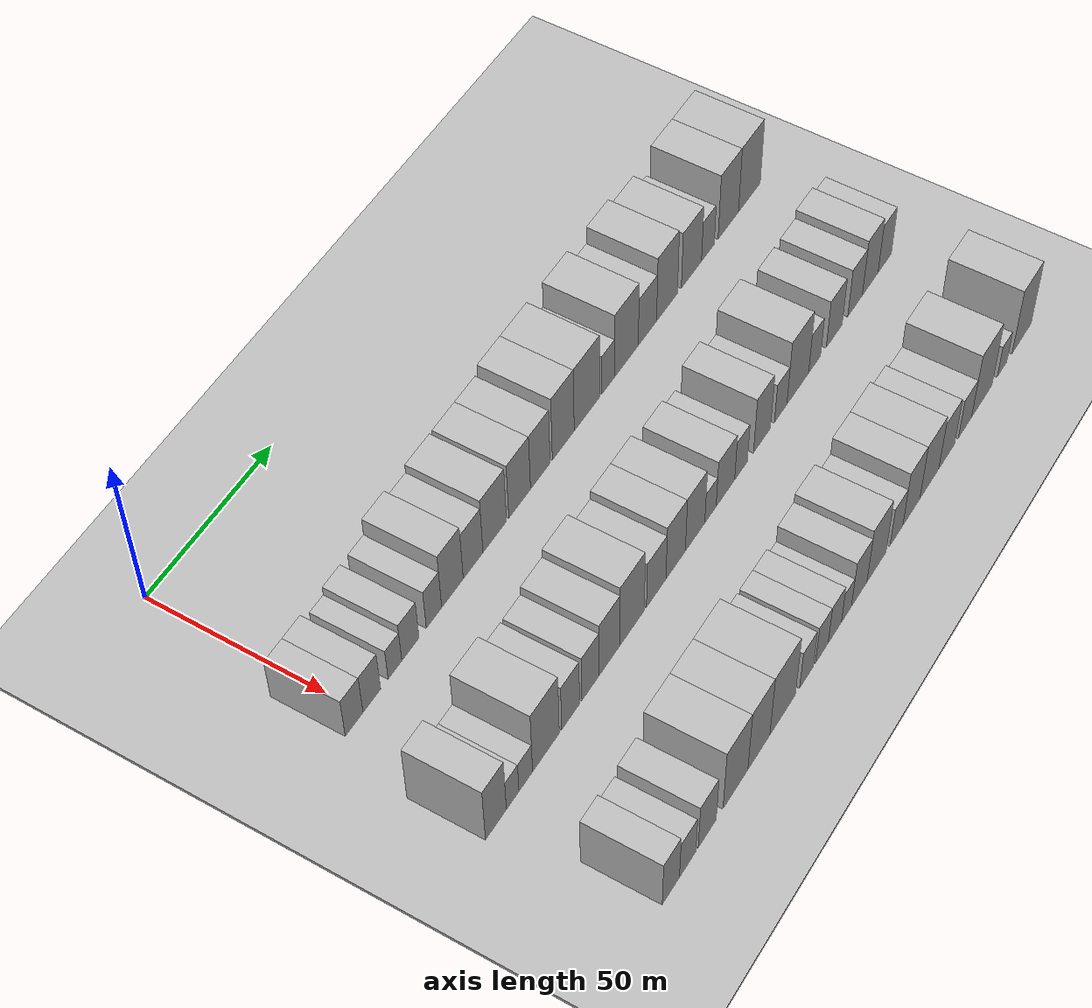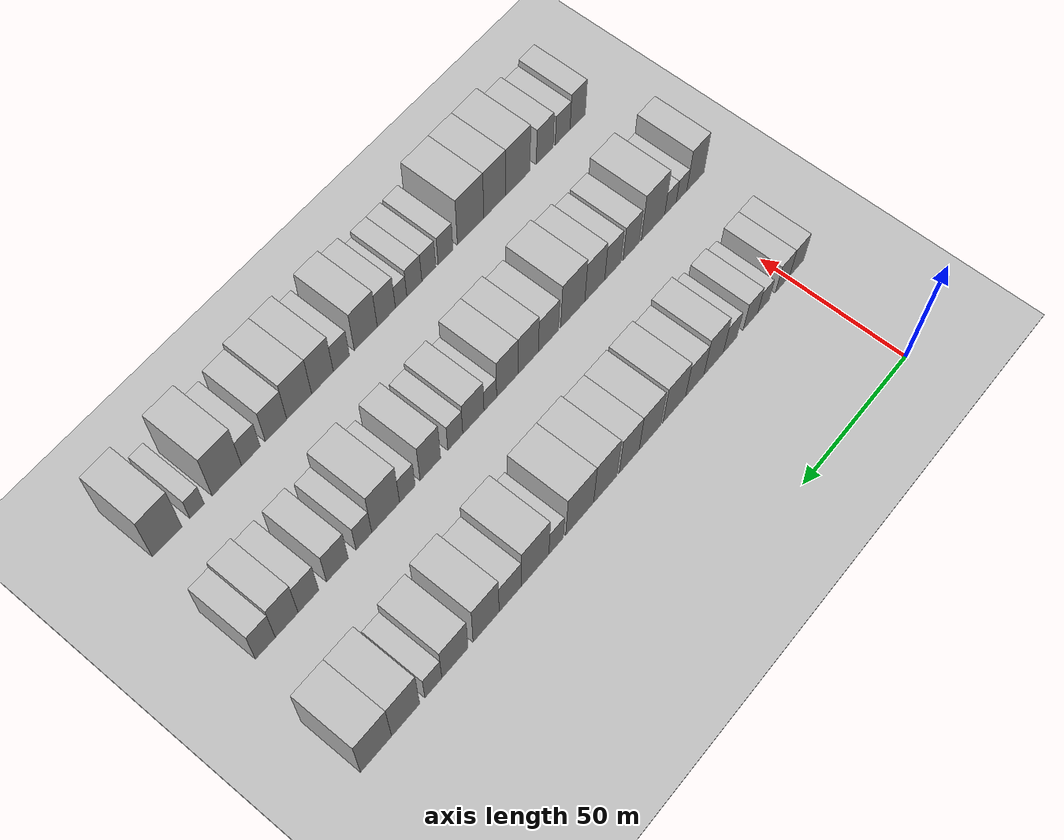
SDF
<sdf version="1.6">
 <world name="default">
  <include><name>ground_plane_1</name><uri>model://HANNAS_ground_plane</uri></include>
  <include>
   <name>ground_plane_2</name>
   <uri>model://HANNAS_ground_plane</uri>
   <pose>100 0 0  0 0 0</pose>
  </include>
  <model name="building_41">
   <static>1</static>
   <pose>50.0000 -3.7257 0 0.000000 0.000000 0.000000</pose>
   <link name="link">
    <pose>0 0 7.50 0 0 0</pose>
    <collision name="collision"><geometry><box><size>20.0000 6.9919 15.0000</size></box></geometry></collision>
    <visual name="visual">
     <cast_shadows>0</cast_shadows>
     <geometry><box><size>20.0000 6.9919 15.0000</size></box></geometry>
     <material>
      <script>
       <uri>model://HANNAS_wall/materials/scripts</uri>
       <uri>model://HANNAS_wall/materials/textures</uri>
       <name>vrc/HANNAS_wall</name>
      </script>
     </material>
    </visual>
   </link>
  </model>
  <model name="building_42">
   <static>1</static>
   <pose>50.0000 3.2710 0 0.000000 0.000000 0.000000</pose>
   <link name="link">
    <pose>0 0 7.50 0 0 0</pose>
    <collision name="collision"><geometry><box><size>20.0000 7.0014 15.0000</size></box></geometry></collision>
    <visual name="visual">
     <cast_shadows>0</cast_shadows>
     <geometry><box><size>20.0000 7.0014 15.0000</size></box></geometry>
     <material>
      <script>
       <uri>model://HANNAS_wall/materials/scripts</uri>
       <uri>model://HANNAS_wall/materials/textures</uri>
       <name>vrc/HANNAS_wall</name>
      </script>
     </material>
    </visual>
   </link>
  </model>
  <model name="building_43">
   <static>1</static>
   <pose>50.0000 12.5421 0 0.000000 0.000000 0.000000</pose>
   <link name="link">
    <pose>0 0 6.00 0 0 0</pose>
    <collision name="collision"><geometry><box><size>20.0000 5.5408 12.0000</size></box></geometry></collision>
    <visual name="visual">
     <cast_shadows>0</cast_shadows>
     <geometry><box><size>20.0000 5.5408 12.0000</size></box></geometry>
     <material>
      <script>
       <uri>model://HANNAS_wall/materials/scripts</uri>
       <uri>model://HANNAS_wall/materials/textures</uri>
       <name>vrc/HANNAS_wall</name>
      </script>
     </material>
    </visual>
   </link>
  </model>
  <model name="building_44">
   <static>1</static>
   <pose>50.0000 18.8378 0 0.000000 0.000000 0.000000</pose>
   <link name="link">
    <pose>0 0 7.50 0 0 0</pose>
    <collision name="collision"><geometry><box><size>20.0000 7.0507 15.0000</size></box></geometry></collision>
    <visual name="visual">
     <cast_shadows>0</cast_shadows>
     <geometry><box><size>20.0000 7.0507 15.0000</size></box></geometry>
     <material>
      <script>
       <uri>model://HANNAS_wall/materials/scripts</uri>
       <uri>model://HANNAS_wall/materials/textures</uri>
       <name>vrc/HANNAS_wall</name>
      </script>
     </material>
    </visual>
   </link>
  </model>
  <model name="building_45">
   <static>1</static>
   <pose>50.0000 28.5747 0 0.000000 0.000000 0.000000</pose>
   <link name="link">
    <pose>0 0 7.50 0 0 0</pose>
    <collision name="collision"><geometry><box><size>20.0000 6.4230 15.0000</size></box></geometry></collision>
    <visual name="visual">
     <cast_shadows>0</cast_shadows>
     <geometry><box><size>20.0000 6.4230 15.0000</size></box></geometry>
     <material>
      <script>
       <uri>model://HANNAS_wall/materials/scripts</uri>
       <uri>model://HANNAS_wall/materials/textures</uri>
       <name>vrc/HANNAS_wall</name>
      </script>
     </material>
    </visual>
   </link>
  </model>
  <model name="building_46">
   <static>1</static>
   <pose>50.0000 36.3425 0 0.000000 0.000000 0.000000</pose>
   <link name="link">
    <pose>0 0 10.50 0 0 0</pose>
    <collision name="collision"><geometry><box><size>20.0000 9.1125 21.0000</size></box></geometry></collision>
    <visual name="visual">
     <cast_shadows>0</cast_shadows>
     <geometry><box><size>20.0000 9.1125 21.0000</size></box></geometry>
     <material>
      <script>
       <uri>model://HANNAS_wall/materials/scripts</uri>
       <uri>model://HANNAS_wall/materials/textures</uri>
       <name>vrc/HANNAS_wall</name>
      </script>
     </material>
    </visual>
   </link>
  </model>
  <model name="building_47">
   <static>1</static>
   <pose>50.0000 45.1180 0 0.000000 0.000000 0.000000</pose>
   <link name="link">
    <pose>0 0 9.00 0 0 0</pose>
    <collision name="collision"><geometry><box><size>20.0000 8.4386 18.0000</size></box></geometry></collision>
    <visual name="visual">
     <cast_shadows>0</cast_shadows>
     <geometry><box><size>20.0000 8.4386 18.0000</size></box></geometry>
     <material>
      <script>
       <uri>model://HANNAS_wall/materials/scripts</uri>
       <uri>model://HANNAS_wall/materials/textures</uri>
       <name>vrc/HANNAS_wall</name>
      </script>
     </material>
    </visual>
   </link>
  </model>
  <model name="building_48">
   <static>1</static>
   <pose>50.0000 54.4829 0 0.000000 0.000000 0.000000</pose>
   <link name="link">
    <pose>0 0 10.50 0 0 0</pose>
    <collision name="collision"><geometry><box><size>20.0000 10.2913 21.0000</size></box></geometry></collision>
    <visual name="visual">
     <cast_shadows>0</cast_shadows>
     <geometry><box><size>20.0000 10.2913 21.0000</size></box></geometry>
     <material>
      <script>
       <uri>model://HANNAS_wall/materials/scripts</uri>
       <uri>model://HANNAS_wall/materials/textures</uri>
       <name>vrc/HANNAS_wall</name>
      </script>
     </material>
    </visual>
   </link>
  </model>
  <model name="building_49">
   <static>1</static>
   <pose>50.0000 65.4643 0 0.000000 0.000000 0.000000</pose>
   <link name="link">
    <pose>0 0 10.50 0 0 0</pose>
    <collision name="collision"><geometry><box><size>20.0000 9.6715 21.0000</size></box></geometry></collision>
    <visual name="visual">
     <cast_shadows>0</cast_shadows>
     <geometry><box><size>20.0000 9.6715 21.0000</size></box></geometry>
     <material>
      <script>
       <uri>model://HANNAS_wall/materials/scripts</uri>
       <uri>model://HANNAS_wall/materials/textures</uri>
       <name>vrc/HANNAS_wall</name>
      </script>
     </material>
    </visual>
   </link>
  </model>
  <model name="building_50">
   <static>1</static>
   <pose>50.0000 74.7260 0 0.000000 0.000000 0.000000</pose>
   <link name="link">
    <pose>0 0 10.50 0 0 0</pose>
    <collision name="collision"><geometry><box><size>20.0000 8.8518 21.0000</size></box></geometry></collision>
    <visual name="visual">
     <cast_shadows>0</cast_shadows>
     <geometry><box><size>20.0000 8.8518 21.0000</size></box></geometry>
     <material>
      <script>
       <uri>model://HANNAS_wall/materials/scripts</uri>
       <uri>model://HANNAS_wall/materials/textures</uri>
       <name>vrc/HANNAS_wall</name>
      </script>
     </material>
    </visual>
   </link>
  </model>
  <model name="building_51">
   <static>1</static>
   <pose>50.0000 85.1890 0 0.000000 0.000000 0.000000</pose>
   <link name="link">
    <pose>0 0 12.00 0 0 0</pose>
    <collision name="collision"><geometry><box><size>20.0000 10.0742 24.0000</size></box></geometry></collision>
    <visual name="visual">
     <cast_shadows>0</cast_shadows>
     <geometry><box><size>20.0000 10.0742 24.0000</size></box></geometry>
     <material>
      <script>
       <uri>model://HANNAS_wall/materials/scripts</uri>
       <uri>model://HANNAS_wall/materials/textures</uri>
       <name>vrc/HANNAS_wall</name>
      </script>
     </material>
    </visual>
   </link>
  </model>
  <model name="building_52">
   <static>1</static>
   <pose>50.0000 96.1986 0 0.000000 0.000000 0.000000</pose>
   <link name="link">
    <pose>0 0 12.00 0 0 0</pose>
    <collision name="collision"><geometry><box><size>20.0000 11.9450 24.0000</size></box></geometry></collision>
    <visual name="visual">
     <cast_shadows>0</cast_shadows>
     <geometry><box><size>20.0000 11.9450 24.0000</size></box></geometry>
     <material>
      <script>
       <uri>model://HANNAS_wall/materials/scripts</uri>
       <uri>model://HANNAS_wall/materials/textures</uri>
       <name>vrc/HANNAS_wall</name>
      </script>
     </material>
    </visual>
   </link>
  </model>
  <model name="building_53">
   <static>1</static>
   <pose>50.0000 106.2073 0 0.000000 0.000000 0.000000</pose>
   <link name="link">
    <pose>0 0 7.50 0 0 0</pose>
    <collision name="collision"><geometry><box><size>20.0000 6.0725 15.0000</size></box></geometry></collision>
    <visual name="visual">
     <cast_shadows>0</cast_shadows>
     <geometry><box><size>20.0000 6.0725 15.0000</size></box></geometry>
     <material>
      <script>
       <uri>model://HANNAS_wall/materials/scripts</uri>
       <uri>model://HANNAS_wall/materials/textures</uri>
       <name>vrc/HANNAS_wall</name>
      </script>
     </material>
    </visual>
   </link>
  </model>
  <model name="building_54">
   <static>1</static>
   <pose>50.0000 114.9942 0 0.000000 0.000000 0.000000</pose>
   <link name="link">
    <pose>0 0 12.00 0 0 0</pose>
    <collision name="collision"><geometry><box><size>20.0000 11.5012 24.0000</size></box></geometry></collision>
    <visual name="visual">
     <cast_shadows>0</cast_shadows>
     <geometry><box><size>20.0000 11.5012 24.0000</size></box></geometry>
     <material>
      <script>
       <uri>model://HANNAS_wall/materials/scripts</uri>
       <uri>model://HANNAS_wall/materials/textures</uri>
       <name>vrc/HANNAS_wall</name>
      </script>
     </material>
    </visual>
   </link>
  </model>
  <model name="building_55">
   <static>1</static>
   <pose>50.0000 125.2269 0 0.000000 0.000000 0.000000</pose>
   <link name="link">
    <pose>0 0 9.00 0 0 0</pose>
    <collision name="collision"><geometry><box><size>20.0000 8.9643 18.0000</size></box></geometry></collision>
    <visual name="visual">
     <cast_shadows>0</cast_shadows>
     <geometry><box><size>20.0000 8.9643 18.0000</size></box></geometry>
     <material>
      <script>
       <uri>model://HANNAS_wall/materials/scripts</uri>
       <uri>model://HANNAS_wall/materials/textures</uri>
       <name>vrc/HANNAS_wall</name>
      </script>
     </material>
    </visual>
   </link>
  </model>
  <model name="building_56">
   <static>1</static>
   <pose>50.0000 134.9218 0 0.000000 0.000000 0.000000</pose>
   <link name="link">
    <pose>0 0 12.00 0 0 0</pose>
    <collision name="collision"><geometry><box><size>20.0000 10.4256 24.0000</size></box></geometry></collision>
    <visual name="visual">
     <cast_shadows>0</cast_shadows>
     <geometry><box><size>20.0000 10.4256 24.0000</size></box></geometry>
     <material>
      <script>
       <uri>model://HANNAS_wall/materials/scripts</uri>
       <uri>model://HANNAS_wall/materials/textures</uri>
       <name>vrc/HANNAS_wall</name>
      </script>
     </material>
    </visual>
   </link>
  </model>
  <model name="building_57">
   <static>1</static>
   <pose>50.0000 147.2808 0 0.000000 0.000000 0.000000</pose>
   <link name="link">
    <pose>0 0 10.50 0 0 0</pose>
    <collision name="collision"><geometry><box><size>20.0000 10.2925 21.0000</size></box></geometry></collision>
    <visual name="visual">
     <cast_shadows>0</cast_shadows>
     <geometry><box><size>20.0000 10.2925 21.0000</size></box></geometry>
     <material>
      <script>
       <uri>model://HANNAS_wall/materials/scripts</uri>
       <uri>model://HANNAS_wall/materials/textures</uri>
       <name>vrc/HANNAS_wall</name>
      </script>
     </material>
    </visual>
   </link>
  </model>
  <model name="building_58">
   <static>1</static>
   <pose>50.0000 155.7194 0 0.000000 0.000000 0.000000</pose>
   <link name="link">
    <pose>0 0 7.50 0 0 0</pose>
    <collision name="collision"><geometry><box><size>20.0000 6.5847 15.0000</size></box></geometry></collision>
    <visual name="visual">
     <cast_shadows>0</cast_shadows>
     <geometry><box><size>20.0000 6.5847 15.0000</size></box></geometry>
     <material>
      <script>
       <uri>model://HANNAS_wall/materials/scripts</uri>
       <uri>model://HANNAS_wall/materials/textures</uri>
       <name>vrc/HANNAS_wall</name>
      </script>
     </material>
    </visual>
   </link>
  </model>
  <model name="building_59">
   <static>1</static>
   <pose>50.0000 166.3810 0 0.000000 0.000000 0.000000</pose>
   <link name="link">
    <pose>0 0 12.00 0 0 0</pose>
    <collision name="collision"><geometry><box><size>20.0000 10.7384 24.0000</size></box></geometry></collision>
    <visual name="visual">
     <cast_shadows>0</cast_shadows>
     <geometry><box><size>20.0000 10.7384 24.0000</size></box></geometry>
     <material>
      <script>
       <uri>model://HANNAS_wall/materials/scripts</uri>
       <uri>model://HANNAS_wall/materials/textures</uri>
       <name>vrc/HANNAS_wall</name>
      </script>
     </material>
    </visual>
   </link>
  </model>
  <model name="building_60">
   <static>1</static>
   <pose>50.0000 177.5760 0 0.000000 0.000000 0.000000</pose>
   <link name="link">
    <pose>0 0 12.00 0 0 0</pose>
    <collision name="collision"><geometry><box><size>20.0000 11.6517 24.0000</size></box></geometry></collision>
    <visual name="visual">
     <cast_shadows>0</cast_shadows>
     <geometry><box><size>20.0000 11.6517 24.0000</size></box></geometry>
     <material>
      <script>
       <uri>model://HANNAS_wall/materials/scripts</uri>
       <uri>model://HANNAS_wall/materials/textures</uri>
       <name>vrc/HANNAS_wall</name>
      </script>
     </material>
    </visual>
   </link>
  </model>
  <model name="building_123">
   <static>1</static>
   <pose>90.0000 -8.9110 0 0.000000 0.000000 0.000000</pose>
   <link name="link">
    <pose>0 0 10.50 0 0 0</pose>
    <collision name="collision"><geometry><box><size>20.0000 8.4237 21.0000</size></box></geometry></collision>
    <visual name="visual">
     <cast_shadows>0</cast_shadows>
     <geometry><box><size>20.0000 8.4237 21.0000</size></box></geometry>
     <material>
      <script>
       <uri>model://HANNAS_wall/materials/scripts</uri>
       <uri>model://HANNAS_wall/materials/textures</uri>
       <name>vrc/HANNAS_wall</name>
      </script>
     </material>
    </visual>
   </link>
  </model>
  <model name="building_124">
   <static>1</static>
   <pose>90.0000 -2.1294 0 0.000000 0.000000 0.000000</pose>
   <link name="link">
    <pose>0 0 6.00 0 0 0</pose>
    <collision name="collision"><geometry><box><size>20.0000 5.1395 12.0000</size></box></geometry></collision>
    <visual name="visual">
     <cast_shadows>0</cast_shadows>
     <geometry><box><size>20.0000 5.1395 12.0000</size></box></geometry>
     <material>
      <script>
       <uri>model://HANNAS_wall/materials/scripts</uri>
       <uri>model://HANNAS_wall/materials/textures</uri>
       <name>vrc/HANNAS_wall</name>
      </script>
     </material>
    </visual>
   </link>
  </model>
  <model name="building_125">
   <static>1</static>
   <pose>90.0000 3.2508 0 0.000000 0.000000 0.000000</pose>
   <link name="link">
    <pose>0 0 6.00 0 0 0</pose>
    <collision name="collision"><geometry><box><size>20.0000 5.6209 12.0000</size></box></geometry></collision>
    <visual name="visual">
     <cast_shadows>0</cast_shadows>
     <geometry><box><size>20.0000 5.6209 12.0000</size></box></geometry>
     <material>
      <script>
       <uri>model://HANNAS_wall/materials/scripts</uri>
       <uri>model://HANNAS_wall/materials/textures</uri>
       <name>vrc/HANNAS_wall</name>
      </script>
     </material>
    </visual>
   </link>
  </model>
  <model name="building_126">
   <static>1</static>
   <pose>90.0000 11.6590 0 0.000000 0.000000 0.000000</pose>
   <link name="link">
    <pose>0 0 12.00 0 0 0</pose>
    <collision name="collision"><geometry><box><size>20.0000 11.1955 24.0000</size></box></geometry></collision>
    <visual name="visual">
     <cast_shadows>0</cast_shadows>
     <geometry><box><size>20.0000 11.1955 24.0000</size></box></geometry>
     <material>
      <script>
       <uri>model://HANNAS_wall/materials/scripts</uri>
       <uri>model://HANNAS_wall/materials/textures</uri>
       <name>vrc/HANNAS_wall</name>
      </script>
     </material>
    </visual>
   </link>
  </model>
  <model name="building_127">
   <static>1</static>
   <pose>90.0000 22.0823 0 0.000000 0.000000 0.000000</pose>
   <link name="link">
    <pose>0 0 9.00 0 0 0</pose>
    <collision name="collision"><geometry><box><size>20.0000 7.6511 18.0000</size></box></geometry></collision>
    <visual name="visual">
     <cast_shadows>0</cast_shadows>
     <geometry><box><size>20.0000 7.6511 18.0000</size></box></geometry>
     <material>
      <script>
       <uri>model://HANNAS_wall/materials/scripts</uri>
       <uri>model://HANNAS_wall/materials/textures</uri>
       <name>vrc/HANNAS_wall</name>
      </script>
     </material>
    </visual>
   </link>
  </model>
  <model name="building_128">
   <static>1</static>
   <pose>90.0000 30.6399 0 0.000000 0.000000 0.000000</pose>
   <link name="link">
    <pose>0 0 9.00 0 0 0</pose>
    <collision name="collision"><geometry><box><size>20.0000 7.4641 18.0000</size></box></geometry></collision>
    <visual name="visual">
     <cast_shadows>0</cast_shadows>
     <geometry><box><size>20.0000 7.4641 18.0000</size></box></geometry>
     <material>
      <script>
       <uri>model://HANNAS_wall/materials/scripts</uri>
       <uri>model://HANNAS_wall/materials/textures</uri>
       <name>vrc/HANNAS_wall</name>
      </script>
     </material>
    </visual>
   </link>
  </model>
  <model name="building_129">
   <static>1</static>
   <pose>90.0000 38.9452 0 0.000000 0.000000 0.000000</pose>
   <link name="link">
    <pose>0 0 10.50 0 0 0</pose>
    <collision name="collision"><geometry><box><size>20.0000 9.1465 21.0000</size></box></geometry></collision>
    <visual name="visual">
     <cast_shadows>0</cast_shadows>
     <geometry><box><size>20.0000 9.1465 21.0000</size></box></geometry>
     <material>
      <script>
       <uri>model://HANNAS_wall/materials/scripts</uri>
       <uri>model://HANNAS_wall/materials/textures</uri>
       <name>vrc/HANNAS_wall</name>
      </script>
     </material>
    </visual>
   </link>
  </model>
  <model name="building_130">
   <static>1</static>
   <pose>90.0000 48.9912 0 0.000000 0.000000 0.000000</pose>
   <link name="link">
    <pose>0 0 12.00 0 0 0</pose>
    <collision name="collision"><geometry><box><size>20.0000 10.9455 24.0000</size></box></geometry></collision>
    <visual name="visual">
     <cast_shadows>0</cast_shadows>
     <geometry><box><size>20.0000 10.9455 24.0000</size></box></geometry>
     <material>
      <script>
       <uri>model://HANNAS_wall/materials/scripts</uri>
       <uri>model://HANNAS_wall/materials/textures</uri>
       <name>vrc/HANNAS_wall</name>
      </script>
     </material>
    </visual>
   </link>
  </model>
  <model name="building_131">
   <static>1</static>
   <pose>90.0000 59.9214 0 0.000000 0.000000 0.000000</pose>
   <link name="link">
    <pose>0 0 9.00 0 0 0</pose>
    <collision name="collision"><geometry><box><size>20.0000 8.9148 18.0000</size></box></geometry></collision>
    <visual name="visual">
     <cast_shadows>0</cast_shadows>
     <geometry><box><size>20.0000 8.9148 18.0000</size></box></geometry>
     <material>
      <script>
       <uri>model://HANNAS_wall/materials/scripts</uri>
       <uri>model://HANNAS_wall/materials/textures</uri>
       <name>vrc/HANNAS_wall</name>
      </script>
     </material>
    </visual>
   </link>
  </model>
  <model name="building_132">
   <static>1</static>
   <pose>90.0000 68.8969 0 0.000000 0.000000 0.000000</pose>
   <link name="link">
    <pose>0 0 10.50 0 0 0</pose>
    <collision name="collision"><geometry><box><size>20.0000 9.0363 21.0000</size></box></geometry></collision>
    <visual name="visual">
     <cast_shadows>0</cast_shadows>
     <geometry><box><size>20.0000 9.0363 21.0000</size></box></geometry>
     <material>
      <script>
       <uri>model://HANNAS_wall/materials/scripts</uri>
       <uri>model://HANNAS_wall/materials/textures</uri>
       <name>vrc/HANNAS_wall</name>
      </script>
     </material>
    </visual>
   </link>
  </model>
  <model name="building_133">
   <static>1</static>
   <pose>90.0000 78.0055 0 0.000000 0.000000 0.000000</pose>
   <link name="link">
    <pose>0 0 10.50 0 0 0</pose>
    <collision name="collision"><geometry><box><size>20.0000 9.1809 21.0000</size></box></geometry></collision>
    <visual name="visual">
     <cast_shadows>0</cast_shadows>
     <geometry><box><size>20.0000 9.1809 21.0000</size></box></geometry>
     <material>
      <script>
       <uri>model://HANNAS_wall/materials/scripts</uri>
       <uri>model://HANNAS_wall/materials/textures</uri>
       <name>vrc/HANNAS_wall</name>
      </script>
     </material>
    </visual>
   </link>
  </model>
  <model name="building_134">
   <static>1</static>
   <pose>90.0000 85.3116 0 0.000000 0.000000 0.000000</pose>
   <link name="link">
    <pose>0 0 6.00 0 0 0</pose>
    <collision name="collision"><geometry><box><size>20.0000 5.4312 12.0000</size></box></geometry></collision>
    <visual name="visual">
     <cast_shadows>0</cast_shadows>
     <geometry><box><size>20.0000 5.4312 12.0000</size></box></geometry>
     <material>
      <script>
       <uri>model://HANNAS_wall/materials/scripts</uri>
       <uri>model://HANNAS_wall/materials/textures</uri>
       <name>vrc/HANNAS_wall</name>
      </script>
     </material>
    </visual>
   </link>
  </model>
  <model name="building_135">
   <static>1</static>
   <pose>90.0000 92.5182 0 0.000000 0.000000 0.000000</pose>
   <link name="link">
    <pose>0 0 9.00 0 0 0</pose>
    <collision name="collision"><geometry><box><size>20.0000 8.9821 18.0000</size></box></geometry></collision>
    <visual name="visual">
     <cast_shadows>0</cast_shadows>
     <geometry><box><size>20.0000 8.9821 18.0000</size></box></geometry>
     <material>
      <script>
       <uri>model://HANNAS_wall/materials/scripts</uri>
       <uri>model://HANNAS_wall/materials/textures</uri>
       <name>vrc/HANNAS_wall</name>
      </script>
     </material>
    </visual>
   </link>
  </model>
  <model name="building_136">
   <static>1</static>
   <pose>90.0000 100.1463 0 0.000000 0.000000 0.000000</pose>
   <link name="link">
    <pose>0 0 7.50 0 0 0</pose>
    <collision name="collision"><geometry><box><size>20.0000 6.2742 15.0000</size></box></geometry></collision>
    <visual name="visual">
     <cast_shadows>0</cast_shadows>
     <geometry><box><size>20.0000 6.2742 15.0000</size></box></geometry>
     <material>
      <script>
       <uri>model://HANNAS_wall/materials/scripts</uri>
       <uri>model://HANNAS_wall/materials/textures</uri>
       <name>vrc/HANNAS_wall</name>
      </script>
     </material>
    </visual>
   </link>
  </model>
  <model name="building_137">
   <static>1</static>
   <pose>90.0000 110.5169 0 0.000000 0.000000 0.000000</pose>
   <link name="link">
    <pose>0 0 10.50 0 0 0</pose>
    <collision name="collision"><geometry><box><size>20.0000 8.4668 21.0000</size></box></geometry></collision>
    <visual name="visual">
     <cast_shadows>0</cast_shadows>
     <geometry><box><size>20.0000 8.4668 21.0000</size></box></geometry>
     <material>
      <script>
       <uri>model://HANNAS_wall/materials/scripts</uri>
       <uri>model://HANNAS_wall/materials/textures</uri>
       <name>vrc/HANNAS_wall</name>
      </script>
     </material>
    </visual>
   </link>
  </model>
  <model name="building_138">
   <static>1</static>
   <pose>90.0000 119.9117 0 0.000000 0.000000 0.000000</pose>
   <link name="link">
    <pose>0 0 7.50 0 0 0</pose>
    <collision name="collision"><geometry><box><size>20.0000 6.3228 15.0000</size></box></geometry></collision>
    <visual name="visual">
     <cast_shadows>0</cast_shadows>
     <geometry><box><size>20.0000 6.3228 15.0000</size></box></geometry>
     <material>
      <script>
       <uri>model://HANNAS_wall/materials/scripts</uri>
       <uri>model://HANNAS_wall/materials/textures</uri>
       <name>vrc/HANNAS_wall</name>
      </script>
     </material>
    </visual>
   </link>
  </model>
  <model name="building_139">
   <static>1</static>
   <pose>90.0000 128.6615 0 0.000000 0.000000 0.000000</pose>
   <link name="link">
    <pose>0 0 12.00 0 0 0</pose>
    <collision name="collision"><geometry><box><size>20.0000 11.1768 24.0000</size></box></geometry></collision>
    <visual name="visual">
     <cast_shadows>0</cast_shadows>
     <geometry><box><size>20.0000 11.1768 24.0000</size></box></geometry>
     <material>
      <script>
       <uri>model://HANNAS_wall/materials/scripts</uri>
       <uri>model://HANNAS_wall/materials/textures</uri>
       <name>vrc/HANNAS_wall</name>
      </script>
     </material>
    </visual>
   </link>
  </model>
  <model name="building_140">
   <static>1</static>
   <pose>90.0000 137.3853 0 0.000000 0.000000 0.000000</pose>
   <link name="link">
    <pose>0 0 7.50 0 0 0</pose>
    <collision name="collision"><geometry><box><size>20.0000 6.2709 15.0000</size></box></geometry></collision>
    <visual name="visual">
     <cast_shadows>0</cast_shadows>
     <geometry><box><size>20.0000 6.2709 15.0000</size></box></geometry>
     <material>
      <script>
       <uri>model://HANNAS_wall/materials/scripts</uri>
       <uri>model://HANNAS_wall/materials/textures</uri>
       <name>vrc/HANNAS_wall</name>
      </script>
     </material>
    </visual>
   </link>
  </model>
  <model name="building_141">
   <static>1</static>
   <pose>90.0000 147.7554 0 0.000000 0.000000 0.000000</pose>
   <link name="link">
    <pose>0 0 9.00 0 0 0</pose>
    <collision name="collision"><geometry><box><size>20.0000 8.4694 18.0000</size></box></geometry></collision>
    <visual name="visual">
     <cast_shadows>0</cast_shadows>
     <geometry><box><size>20.0000 8.4694 18.0000</size></box></geometry>
     <material>
      <script>
       <uri>model://HANNAS_wall/materials/scripts</uri>
       <uri>model://HANNAS_wall/materials/textures</uri>
       <name>vrc/HANNAS_wall</name>
      </script>
     </material>
    </visual>
   </link>
  </model>
  <model name="building_142">
   <static>1</static>
   <pose>90.0000 158.9424 0 0.000000 0.000000 0.000000</pose>
   <link name="link">
    <pose>0 0 9.00 0 0 0</pose>
    <collision name="collision"><geometry><box><size>20.0000 7.9045 18.0000</size></box></geometry></collision>
    <visual name="visual">
     <cast_shadows>0</cast_shadows>
     <geometry><box><size>20.0000 7.9045 18.0000</size></box></geometry>
     <material>
      <script>
       <uri>model://HANNAS_wall/materials/scripts</uri>
       <uri>model://HANNAS_wall/materials/textures</uri>
       <name>vrc/HANNAS_wall</name>
      </script>
     </material>
    </visual>
   </link>
  </model>
  <model name="building_143">
   <static>1</static>
   <pose>90.0000 167.1999 0 0.000000 0.000000 0.000000</pose>
   <link name="link">
    <pose>0 0 10.50 0 0 0</pose>
    <collision name="collision"><geometry><box><size>20.0000 8.6106 21.0000</size></box></geometry></collision>
    <visual name="visual">
     <cast_shadows>0</cast_shadows>
     <geometry><box><size>20.0000 8.6106 21.0000</size></box></geometry>
     <material>
      <script>
       <uri>model://HANNAS_wall/materials/scripts</uri>
       <uri>model://HANNAS_wall/materials/textures</uri>
       <name>vrc/HANNAS_wall</name>
      </script>
     </material>
    </visual>
   </link>
  </model>
  <model name="building_144">
   <static>1</static>
   <pose>90.0000 175.2237 0 0.000000 0.000000 0.000000</pose>
   <link name="link">
    <pose>0 0 9.00 0 0 0</pose>
    <collision name="collision"><geometry><box><size>20.0000 7.4371 18.0000</size></box></geometry></collision>
    <visual name="visual">
     <cast_shadows>0</cast_shadows>
     <geometry><box><size>20.0000 7.4371 18.0000</size></box></geometry>
     <material>
      <script>
       <uri>model://HANNAS_wall/materials/scripts</uri>
       <uri>model://HANNAS_wall/materials/textures</uri>
       <name>vrc/HANNAS_wall</name>
      </script>
     </material>
    </visual>
   </link>
  </model>
  <model name="building_209">
   <static>1</static>
   <pose>130.0000 -3.5173 0 0.000000 0.000000 0.000000</pose>
   <link name="link">
    <pose>0 0 9.00 0 0 0</pose>
    <collision name="collision"><geometry><box><size>20.0000 7.3163 18.0000</size></box></geometry></collision>
    <visual name="visual">
     <cast_shadows>0</cast_shadows>
     <geometry><box><size>20.0000 7.3163 18.0000</size></box></geometry>
     <material>
      <script>
       <uri>model://HANNAS_wall/materials/scripts</uri>
       <uri>model://HANNAS_wall/materials/textures</uri>
       <name>vrc/HANNAS_wall</name>
      </script>
     </material>
    </visual>
   </link>
  </model>
  <model name="building_210">
   <static>1</static>
   <pose>130.0000 3.6728 0 0.000000 0.000000 0.000000</pose>
   <link name="link">
    <pose>0 0 7.50 0 0 0</pose>
    <collision name="collision"><geometry><box><size>20.0000 7.0640 15.0000</size></box></geometry></collision>
    <visual name="visual">
     <cast_shadows>0</cast_shadows>
     <geometry><box><size>20.0000 7.0640 15.0000</size></box></geometry>
     <material>
      <script>
       <uri>model://HANNAS_wall/materials/scripts</uri>
       <uri>model://HANNAS_wall/materials/textures</uri>
       <name>vrc/HANNAS_wall</name>
      </script>
     </material>
    </visual>
   </link>
  </model>
  <model name="building_211">
   <static>1</static>
   <pose>130.0000 12.1608 0 0.000000 0.000000 0.000000</pose>
   <link name="link">
    <pose>0 0 9.00 0 0 0</pose>
    <collision name="collision"><geometry><box><size>20.0000 7.9121 18.0000</size></box></geometry></collision>
    <visual name="visual">
     <cast_shadows>0</cast_shadows>
     <geometry><box><size>20.0000 7.9121 18.0000</size></box></geometry>
     <material>
      <script>
       <uri>model://HANNAS_wall/materials/scripts</uri>
       <uri>model://HANNAS_wall/materials/textures</uri>
       <name>vrc/HANNAS_wall</name>
      </script>
     </material>
    </visual>
   </link>
  </model>
  <model name="building_212">
   <static>1</static>
   <pose>130.0000 24.6779 0 0.000000 0.000000 0.000000</pose>
   <link name="link">
    <pose>0 0 12.00 0 0 0</pose>
    <collision name="collision"><geometry><box><size>20.0000 11.1219 24.0000</size></box></geometry></collision>
    <visual name="visual">
     <cast_shadows>0</cast_shadows>
     <geometry><box><size>20.0000 11.1219 24.0000</size></box></geometry>
     <material>
      <script>
       <uri>model://HANNAS_wall/materials/scripts</uri>
       <uri>model://HANNAS_wall/materials/textures</uri>
       <name>vrc/HANNAS_wall</name>
      </script>
     </material>
    </visual>
   </link>
  </model>
  <model name="building_213">
   <static>1</static>
   <pose>130.0000 35.2692 0 0.000000 0.000000 0.000000</pose>
   <link name="link">
    <pose>0 0 12.00 0 0 0</pose>
    <collision name="collision"><geometry><box><size>20.0000 10.0607 24.0000</size></box></geometry></collision>
    <visual name="visual">
     <cast_shadows>0</cast_shadows>
     <geometry><box><size>20.0000 10.0607 24.0000</size></box></geometry>
     <material>
      <script>
       <uri>model://HANNAS_wall/materials/scripts</uri>
       <uri>model://HANNAS_wall/materials/textures</uri>
       <name>vrc/HANNAS_wall</name>
      </script>
     </material>
    </visual>
   </link>
  </model>
  <model name="building_214">
   <static>1</static>
   <pose>130.0000 46.2457 0 0.000000 0.000000 0.000000</pose>
   <link name="link">
    <pose>0 0 12.00 0 0 0</pose>
    <collision name="collision"><geometry><box><size>20.0000 11.8924 24.0000</size></box></geometry></collision>
    <visual name="visual">
     <cast_shadows>0</cast_shadows>
     <geometry><box><size>20.0000 11.8924 24.0000</size></box></geometry>
     <material>
      <script>
       <uri>model://HANNAS_wall/materials/scripts</uri>
       <uri>model://HANNAS_wall/materials/textures</uri>
       <name>vrc/HANNAS_wall</name>
      </script>
     </material>
    </visual>
   </link>
  </model>
  <model name="building_215">
   <static>1</static>
   <pose>130.0000 57.4810 0 0.000000 0.000000 0.000000</pose>
   <link name="link">
    <pose>0 0 7.50 0 0 0</pose>
    <collision name="collision"><geometry><box><size>20.0000 6.5782 15.0000</size></box></geometry></collision>
    <visual name="visual">
     <cast_shadows>0</cast_shadows>
     <geometry><box><size>20.0000 6.5782 15.0000</size></box></geometry>
     <material>
      <script>
       <uri>model://HANNAS_wall/materials/scripts</uri>
       <uri>model://HANNAS_wall/materials/textures</uri>
       <name>vrc/HANNAS_wall</name>
      </script>
     </material>
    </visual>
   </link>
  </model>
  <model name="building_216">
   <static>1</static>
   <pose>130.0000 64.8211 0 0.000000 0.000000 0.000000</pose>
   <link name="link">
    <pose>0 0 7.50 0 0 0</pose>
    <collision name="collision"><geometry><box><size>20.0000 6.1020 15.0000</size></box></geometry></collision>
    <visual name="visual">
     <cast_shadows>0</cast_shadows>
     <geometry><box><size>20.0000 6.1020 15.0000</size></box></geometry>
     <material>
      <script>
       <uri>model://HANNAS_wall/materials/scripts</uri>
       <uri>model://HANNAS_wall/materials/textures</uri>
       <name>vrc/HANNAS_wall</name>
      </script>
     </material>
    </visual>
   </link>
  </model>
  <model name="building_217">
   <static>1</static>
   <pose>130.0000 71.1199 0 0.000000 0.000000 0.000000</pose>
   <link name="link">
    <pose>0 0 7.50 0 0 0</pose>
    <collision name="collision"><geometry><box><size>20.0000 6.4956 15.0000</size></box></geometry></collision>
    <visual name="visual">
     <cast_shadows>0</cast_shadows>
     <geometry><box><size>20.0000 6.4956 15.0000</size></box></geometry>
     <material>
      <script>
       <uri>model://HANNAS_wall/materials/scripts</uri>
       <uri>model://HANNAS_wall/materials/textures</uri>
       <name>vrc/HANNAS_wall</name>
      </script>
     </material>
    </visual>
   </link>
  </model>
  <model name="building_218">
   <static>1</static>
   <pose>130.0000 76.8147 0 0.000000 0.000000 0.000000</pose>
   <link name="link">
    <pose>0 0 6.00 0 0 0</pose>
    <collision name="collision"><geometry><box><size>20.0000 4.8940 12.0000</size></box></geometry></collision>
    <visual name="visual">
     <cast_shadows>0</cast_shadows>
     <geometry><box><size>20.0000 4.8940 12.0000</size></box></geometry>
     <material>
      <script>
       <uri>model://HANNAS_wall/materials/scripts</uri>
       <uri>model://HANNAS_wall/materials/textures</uri>
       <name>vrc/HANNAS_wall</name>
      </script>
     </material>
    </visual>
   </link>
  </model>
  <model name="building_219">
   <static>1</static>
   <pose>130.0000 83.1299 0 0.000000 0.000000 0.000000</pose>
   <link name="link">
    <pose>0 0 9.00 0 0 0</pose>
    <collision name="collision"><geometry><box><size>20.0000 7.7364 18.0000</size></box></geometry></collision>
    <visual name="visual">
     <cast_shadows>0</cast_shadows>
     <geometry><box><size>20.0000 7.7364 18.0000</size></box></geometry>
     <material>
      <script>
       <uri>model://HANNAS_wall/materials/scripts</uri>
       <uri>model://HANNAS_wall/materials/textures</uri>
       <name>vrc/HANNAS_wall</name>
      </script>
     </material>
    </visual>
   </link>
  </model>
  <model name="building_220">
   <static>1</static>
   <pose>130.0000 91.8397 0 0.000000 0.000000 0.000000</pose>
   <link name="link">
    <pose>0 0 10.50 0 0 0</pose>
    <collision name="collision"><geometry><box><size>20.0000 9.6833 21.0000</size></box></geometry></collision>
    <visual name="visual">
     <cast_shadows>0</cast_shadows>
     <geometry><box><size>20.0000 9.6833 21.0000</size></box></geometry>
     <material>
      <script>
       <uri>model://HANNAS_wall/materials/scripts</uri>
       <uri>model://HANNAS_wall/materials/textures</uri>
       <name>vrc/HANNAS_wall</name>
      </script>
     </material>
    </visual>
   </link>
  </model>
  <model name="building_221">
   <static>1</static>
   <pose>130.0000 102.0013 0 0.000000 0.000000 0.000000</pose>
   <link name="link">
    <pose>0 0 7.50 0 0 0</pose>
    <collision name="collision"><geometry><box><size>20.0000 6.6397 15.0000</size></box></geometry></collision>
    <visual name="visual">
     <cast_shadows>0</cast_shadows>
     <geometry><box><size>20.0000 6.6397 15.0000</size></box></geometry>
     <material>
      <script>
       <uri>model://HANNAS_wall/materials/scripts</uri>
       <uri>model://HANNAS_wall/materials/textures</uri>
       <name>vrc/HANNAS_wall</name>
      </script>
     </material>
    </visual>
   </link>
  </model>
  <model name="building_222">
   <static>1</static>
   <pose>130.0000 109.7700 0 0.000000 0.000000 0.000000</pose>
   <link name="link">
    <pose>0 0 10.50 0 0 0</pose>
    <collision name="collision"><geometry><box><size>20.0000 8.8978 21.0000</size></box></geometry></collision>
    <visual name="visual">
     <cast_shadows>0</cast_shadows>
     <geometry><box><size>20.0000 8.8978 21.0000</size></box></geometry>
     <material>
      <script>
       <uri>model://HANNAS_wall/materials/scripts</uri>
       <uri>model://HANNAS_wall/materials/textures</uri>
       <name>vrc/HANNAS_wall</name>
      </script>
     </material>
    </visual>
   </link>
  </model>
  <model name="building_223">
   <static>1</static>
   <pose>130.0000 119.2462 0 0.000000 0.000000 0.000000</pose>
   <link name="link">
    <pose>0 0 10.50 0 0 0</pose>
    <collision name="collision"><geometry><box><size>20.0000 10.0546 21.0000</size></box></geometry></collision>
    <visual name="visual">
     <cast_shadows>0</cast_shadows>
     <geometry><box><size>20.0000 10.0546 21.0000</size></box></geometry>
     <material>
      <script>
       <uri>model://HANNAS_wall/materials/scripts</uri>
       <uri>model://HANNAS_wall/materials/textures</uri>
       <name>vrc/HANNAS_wall</name>
      </script>
     </material>
    </visual>
   </link>
  </model>
  <model name="building_224">
   <static>1</static>
   <pose>130.0000 128.5608 0 0.000000 0.000000 0.000000</pose>
   <link name="link">
    <pose>0 0 9.00 0 0 0</pose>
    <collision name="collision"><geometry><box><size>20.0000 8.5745 18.0000</size></box></geometry></collision>
    <visual name="visual">
     <cast_shadows>0</cast_shadows>
     <geometry><box><size>20.0000 8.5745 18.0000</size></box></geometry>
     <material>
      <script>
       <uri>model://HANNAS_wall/materials/scripts</uri>
       <uri>model://HANNAS_wall/materials/textures</uri>
       <name>vrc/HANNAS_wall</name>
      </script>
     </material>
    </visual>
   </link>
  </model>
  <model name="building_225">
   <static>1</static>
   <pose>130.0000 138.4946 0 0.000000 0.000000 0.000000</pose>
   <link name="link">
    <pose>0 0 7.50 0 0 0</pose>
    <collision name="collision"><geometry><box><size>20.0000 7.2932 15.0000</size></box></geometry></collision>
    <visual name="visual">
     <cast_shadows>0</cast_shadows>
     <geometry><box><size>20.0000 7.2932 15.0000</size></box></geometry>
     <material>
      <script>
       <uri>model://HANNAS_wall/materials/scripts</uri>
       <uri>model://HANNAS_wall/materials/textures</uri>
       <name>vrc/HANNAS_wall</name>
      </script>
     </material>
    </visual>
   </link>
  </model>
  <model name="building_226">
   <static>1</static>
   <pose>130.0000 147.8386 0 0.000000 0.000000 0.000000</pose>
   <link name="link">
    <pose>0 0 12.00 0 0 0</pose>
    <collision name="collision"><geometry><box><size>20.0000 11.3947 24.0000</size></box></geometry></collision>
    <visual name="visual">
     <cast_shadows>0</cast_shadows>
     <geometry><box><size>20.0000 11.3947 24.0000</size></box></geometry>
     <material>
      <script>
       <uri>model://HANNAS_wall/materials/scripts</uri>
       <uri>model://HANNAS_wall/materials/textures</uri>
       <name>vrc/HANNAS_wall</name>
      </script>
     </material>
    </visual>
   </link>
  </model>
  <model name="building_227">
   <static>1</static>
   <pose>130.0000 159.2592 0 0.000000 0.000000 0.000000</pose>
   <link name="link">
    <pose>0 0 6.00 0 0 0</pose>
    <collision name="collision"><geometry><box><size>20.0000 5.4466 12.0000</size></box></geometry></collision>
    <visual name="visual">
     <cast_shadows>0</cast_shadows>
     <geometry><box><size>20.0000 5.4466 12.0000</size></box></geometry>
     <material>
      <script>
       <uri>model://HANNAS_wall/materials/scripts</uri>
       <uri>model://HANNAS_wall/materials/textures</uri>
       <name>vrc/HANNAS_wall</name>
      </script>
     </material>
    </visual>
   </link>
  </model>
  <model name="building_228">
   <static>1</static>
   <pose>130.0000 170.4994 0 0.000000 0.000000 0.000000</pose>
   <link name="link">
    <pose>0 0 12.00 0 0 0</pose>
    <collision name="collision"><geometry><box><size>20.0000 11.0338 24.0000</size></box></geometry></collision>
    <visual name="visual">
     <cast_shadows>0</cast_shadows>
     <geometry><box><size>20.0000 11.0338 24.0000</size></box></geometry>
     <material>
      <script>
       <uri>model://HANNAS_wall/materials/scripts</uri>
       <uri>model://HANNAS_wall/materials/textures</uri>
       <name>vrc/HANNAS_wall</name>
      </script>
     </material>
    </visual>
   </link>
  </model>
 </world>
</sdf>
